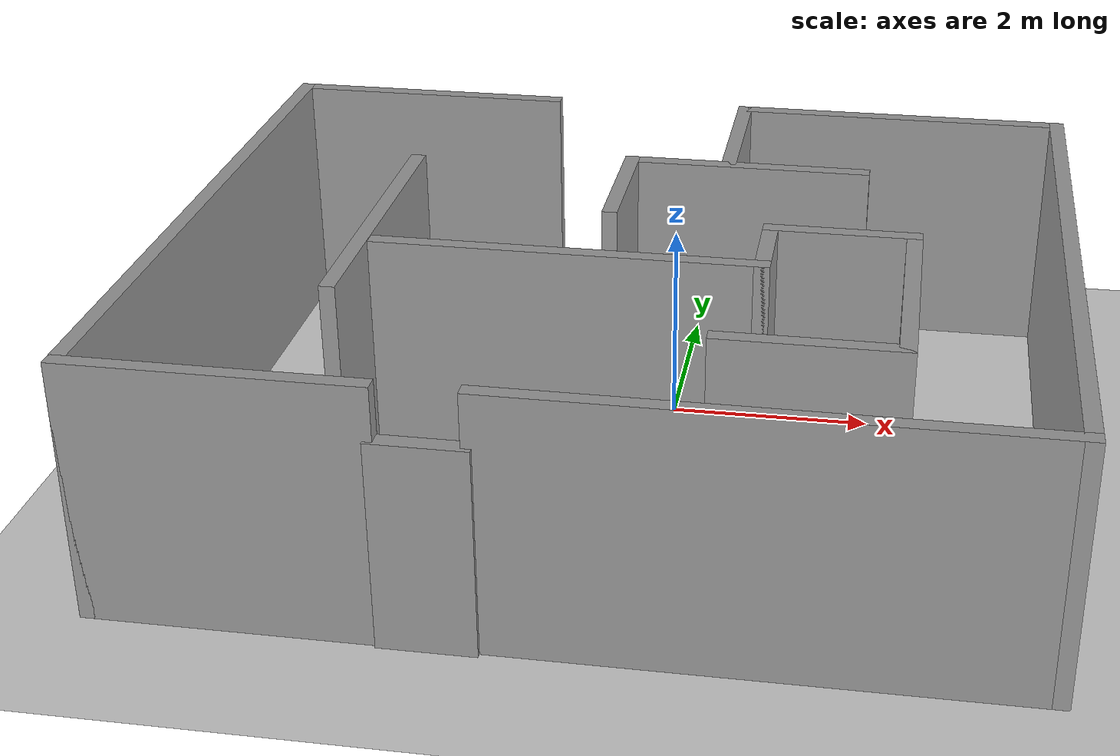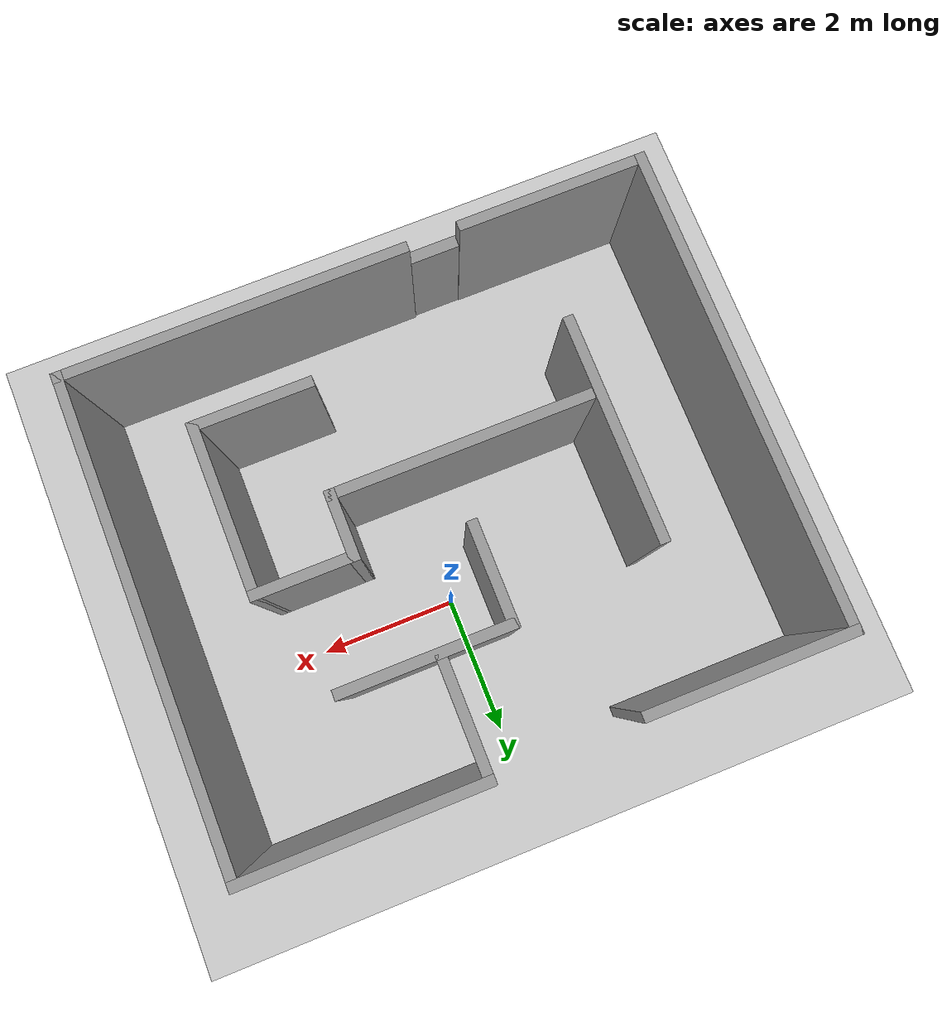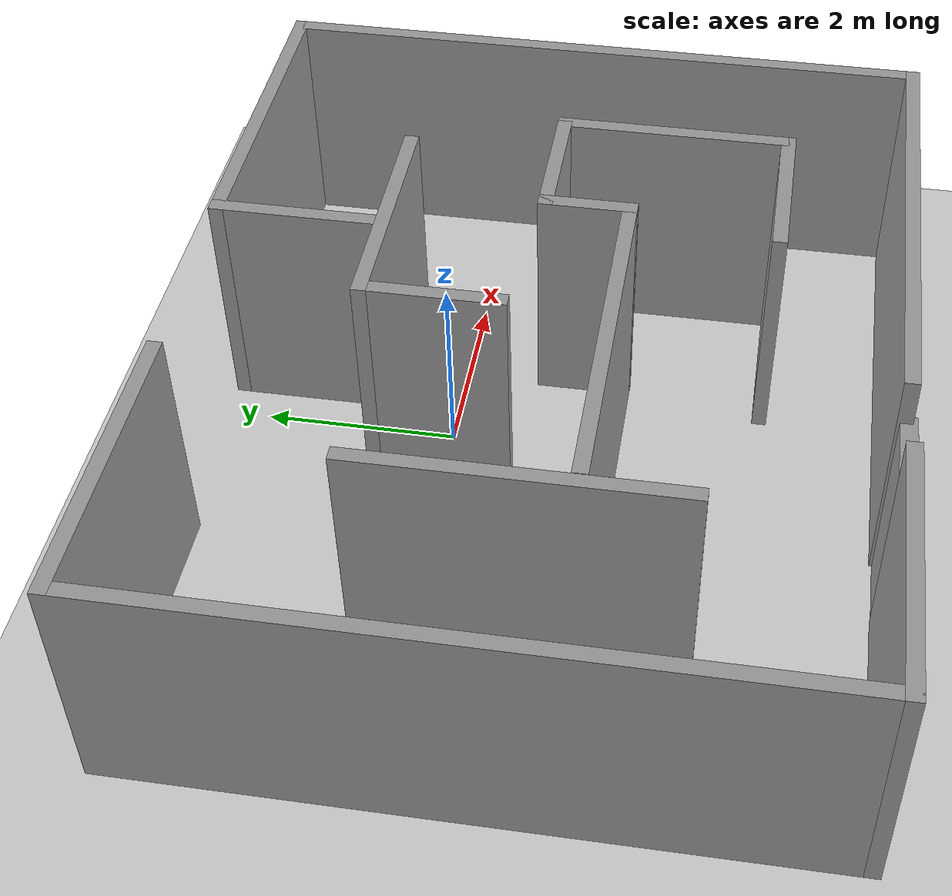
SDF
<sdf version="1.7">
 <world name="default">
  <light name="sun" type="directional">
   <pose>0 0 10 0 -0 0</pose>
   <diffuse>0.8 0.8 0.8 1</diffuse>
   <specular>0.2 0.2 0.2 1</specular>
   <attenuation>
    <range>1000</range>
    <constant>0.9</constant>
    <linear>0.01</linear>
    <quadratic>0.001</quadratic>
   </attenuation>
   <direction>-0.5 0.1 -0.9</direction>
   <spot><inner_angle>0</inner_angle><outer_angle>0</outer_angle><falloff>0</falloff></spot>
  </light>
  <model name="ground_plane">
   <static>1</static>
   <link name="link">
    <collision name="collision">
     <geometry><plane><normal>0 0 1</normal><size>100 100</size></plane></geometry>
     <surface>
      <contact><collide_bitmask>65535</collide_bitmask></contact>
      <friction><ode><mu>100</mu><mu2>50</mu2></ode></friction>
     </surface>
    </collision>
    <visual name="visual">
     <cast_shadows>0</cast_shadows>
     <geometry><plane><normal>0 0 1</normal><size>100 100</size></plane></geometry>
     <material>
      <script><uri>file://media/materials/scripts/gazebo.material</uri><name>Gazebo/Grey</name></script>
     </material>
    </visual>
   </link>
  </model>
  <gravity>0 0 -9.8</gravity>
  <magnetic_field>6e-06 2.3e-05 -4.2e-05</magnetic_field>
  <atmosphere type="adiabatic"/>
  <physics type="ode">
   <max_step_size>0.001</max_step_size>
   <real_time_factor>1</real_time_factor>
   <real_time_update_rate>1000</real_time_update_rate>
  </physics>
  <scene><ambient>0.4 0.4 0.4 1</ambient><background>0.7 0.7 0.7 1</background><shadows>1</shadows></scene>
  <audio><device>default</device></audio>
  <spherical_coordinates>
   <surface_model>EARTH_WGS84</surface_model>
   <latitude_deg>0</latitude_deg>
   <longitude_deg>0</longitude_deg>
   <elevation>0</elevation>
   <heading_deg>0</heading_deg>
  </spherical_coordinates>
  <model name="path2">
   <pose>-0.378518 -1.04624 0 0 -0 0</pose>
   <link name="Door_0">
    <collision name="Door_0_Collision">
     <geometry><box><size>0.9 0.17 2</size></box></geometry>
     <pose>0 0 1 0 -0 0</pose>
    </collision>
    <visual name="Door_0_Visual">
     <pose>0 0 1 0 -0 0</pose>
     <geometry><box><size>0.9 0.17 2</size></box></geometry>
     <material>
      <script><uri>file://media/materials/scripts/gazebo.material</uri><name>Gazebo/Grey</name></script>
     </material>
    </visual>
    <pose>-1.12148 -3.45376 0 0 -0 0</pose>
   </link>
   <link name="Wall_10">
    <collision name="Wall_10_Collision">
     <geometry><box><size>1.75 0.15 2.5</size></box></geometry>
     <pose>0 0 1.25 0 -0 0</pose>
    </collision>
    <visual name="Wall_10_Visual">
     <pose>0 0 1.25 0 -0 0</pose>
     <geometry><box><size>1.75 0.15 2.5</size></box></geometry>
     <material>
      <script><uri>file://media/materials/scripts/gazebo.material</uri><name>Gazebo/Grey</name></script>
      <ambient>1 1 1 1</ambient>
     </material>
     <meta><layer>0</layer></meta>
    </visual>
    <pose>0.811482 2.63376 0 0 -0 -1.5708</pose>
   </link>
   <link name="Wall_12">
    <collision name="Wall_12_Collision">
     <geometry><box><size>2.5 0.15 2.5</size></box></geometry>
     <pose>0 0 1.25 0 -0 0</pose>
    </collision>
    <visual name="Wall_12_Visual">
     <pose>0 0 1.25 0 -0 0</pose>
     <geometry><box><size>2.5 0.15 2.5</size></box></geometry>
     <material>
      <script><uri>file://media/materials/scripts/gazebo.material</uri><name>Gazebo/Grey</name></script>
      <ambient>1 1 1 1</ambient>
     </material>
     <meta><layer>0</layer></meta>
    </visual>
    <pose>0.992609 1.75294 0 0 -0 3.14159</pose>
   </link>
   <link name="Wall_13">
    <collision name="Wall_13_Collision">
     <geometry><box><size>1.5 0.15 2.5</size></box></geometry>
     <pose>0 0 1.25 0 -0 0</pose>
    </collision>
    <visual name="Wall_13_Visual">
     <pose>0 0 1.25 0 -0 0</pose>
     <geometry><box><size>1.5 0.15 2.5</size></box></geometry>
     <material>
      <script><uri>file://media/materials/scripts/gazebo.material</uri><name>Gazebo/Grey</name></script>
      <ambient>1 1 1 1</ambient>
     </material>
     <meta><layer>0</layer></meta>
    </visual>
    <pose>-0.182391 1.07794 0 0 -0 -1.5708</pose>
   </link>
   <link name="Wall_17">
    <collision name="Wall_17_Collision">
     <geometry><box><size>3.75 0.15 2.5</size></box></geometry>
     <pose>0 0 1.25 0 -0 0</pose>
    </collision>
    <visual name="Wall_17_Visual">
     <pose>0 0 1.25 0 -0 0</pose>
     <geometry><box><size>3.75 0.15 2.5</size></box></geometry>
     <material>
      <script><uri>file://media/materials/scripts/gazebo.material</uri><name>Gazebo/Grey</name></script>
      <ambient>1 1 1 1</ambient>
     </material>
     <meta><layer>0</layer></meta>
    </visual>
    <pose>-0.417149 -0.640571 0 0 -0 0</pose>
   </link>
   <link name="Wall_18">
    <collision name="Wall_18_Collision">
     <geometry><box><size>1 0.15 2.5</size></box></geometry>
     <pose>0 0 1.25 0 -0 0</pose>
    </collision>
    <visual name="Wall_18_Visual">
     <pose>0 0 1.25 0 -0 0</pose>
     <geometry><box><size>1 0.15 2.5</size></box></geometry>
     <material>
      <script><uri>file://media/materials/scripts/gazebo.material</uri><name>Gazebo/Grey</name></script>
      <ambient>1 1 1 1</ambient>
     </material>
     <meta><layer>0</layer></meta>
    </visual>
    <pose>1.38285 -0.215571 0 0 -0 1.5708</pose>
   </link>
   <link name="Wall_19">
    <collision name="Wall_19_Collision">
     <geometry><box><size>1.5 0.15 2.5</size></box></geometry>
     <pose>0 0 1.25 0 -0 0</pose>
    </collision>
    <visual name="Wall_19_Visual">
     <pose>0 0 1.25 0 -0 0</pose>
     <geometry><box><size>1.5 0.15 2.5</size></box></geometry>
     <material>
      <script><uri>file://media/materials/scripts/gazebo.material</uri><name>Gazebo/Grey</name></script>
      <ambient>1 1 1 1</ambient>
     </material>
     <meta><layer>0</layer></meta>
    </visual>
    <pose>2.05785 0.209429 0 0 -0 0</pose>
   </link>
   <link name="Wall_2">
    <collision name="Wall_2_Collision">
     <geometry><box><size>2.75 0.15 2.5</size></box></geometry>
     <pose>0 0 1.25 0 -0 0</pose>
    </collision>
    <visual name="Wall_2_Visual">
     <pose>0 0 1.25 0 -0 0</pose>
     <geometry><box><size>2.75 0.15 2.5</size></box></geometry>
     <material>
      <script><uri>file://media/materials/scripts/gazebo.material</uri><name>Gazebo/Grey</name></script>
      <ambient>1 1 1 1</ambient>
     </material>
     <meta><layer>0</layer></meta>
    </visual>
    <pose>-2.86148 -3.43376 0 0 -0 3.14159</pose>
   </link>
   <link name="Wall_20">
    <collision name="Wall_20_Collision">
     <geometry><box><size>2.5 0.15 2.5</size></box></geometry>
     <pose>0 0 1.25 0 -0 0</pose>
    </collision>
    <visual name="Wall_20_Visual">
     <pose>0 0 1.25 0 -0 0</pose>
     <geometry><box><size>2.5 0.15 2.5</size></box></geometry>
     <material>
      <script><uri>file://media/materials/scripts/gazebo.material</uri><name>Gazebo/Grey</name></script>
      <ambient>1 1 1 1</ambient>
     </material>
     <meta><layer>0</layer></meta>
    </visual>
    <pose>2.73285 -0.965571 0 0 -0 -1.5708</pose>
   </link>
   <link name="Wall_21">
    <collision name="Wall_21_Collision">
     <geometry><box><size>1.75 0.15 2.5</size></box></geometry>
     <pose>0 0 1.25 0 -0 0</pose>
    </collision>
    <visual name="Wall_21_Visual">
     <pose>0 0 1.25 0 -0 0</pose>
     <geometry><box><size>1.75 0.15 2.5</size></box></geometry>
     <material>
      <script><uri>file://media/materials/scripts/gazebo.material</uri><name>Gazebo/Grey</name></script>
      <ambient>1 1 1 1</ambient>
     </material>
     <meta><layer>0</layer></meta>
    </visual>
    <pose>1.93285 -2.14057 0 0 -0 3.14159</pose>
   </link>
   <link name="Wall_24">
    <collision name="Wall_24_Collision">
     <geometry><box><size>3.25 0.15 2.5</size></box></geometry>
     <pose>0 0 1.25 0 -0 0</pose>
    </collision>
    <visual name="Wall_24_Visual">
     <pose>0 0 1.25 0 -0 0</pose>
     <geometry><box><size>3.25 0.15 2.5</size></box></geometry>
     <material>
      <script><uri>file://media/materials/scripts/gazebo.material</uri><name>Gazebo/Grey</name></script>
      <ambient>1 1 1 1</ambient>
     </material>
     <meta><layer>0</layer></meta>
    </visual>
    <pose>-2.37273 -0.107802 0 0 -0 -1.5708</pose>
   </link>
   <link name="Wall_4">
    <collision name="Wall_4_Collision">
     <geometry><box><size>7 0.15 2.5</size></box></geometry>
     <pose>0 0 1.25 0 -0 0</pose>
    </collision>
    <visual name="Wall_4_Visual">
     <pose>0 0 1.25 0 -0 0</pose>
     <geometry><box><size>7 0.15 2.5</size></box></geometry>
     <material>
      <script><uri>file://media/materials/scripts/gazebo.material</uri><name>Gazebo/Grey</name></script>
      <ambient>1 1 1 1</ambient>
     </material>
     <meta><layer>0</layer></meta>
    </visual>
    <pose>-4.16148 -0.008756 0 0 -0 1.5708</pose>
   </link>
   <link name="Wall_5">
    <collision name="Wall_5_Collision">
     <geometry><box><size>3 0.15 2.5</size></box></geometry>
     <pose>0 0 1.25 0 -0 0</pose>
    </collision>
    <visual name="Wall_5_Visual">
     <pose>0 0 1.25 0 -0 0</pose>
     <geometry><box><size>3 0.15 2.5</size></box></geometry>
     <material>
      <script><uri>file://media/materials/scripts/gazebo.material</uri><name>Gazebo/Grey</name></script>
      <ambient>1 1 1 1</ambient>
     </material>
     <meta><layer>0</layer></meta>
    </visual>
    <pose>-2.73648 3.41624 0 0 -0 0</pose>
   </link>
   <link name="Wall_7">
    <collision name="Wall_7_Collision">
     <geometry><box><size>5 0.15 2.5</size></box></geometry>
     <pose>0 0 1.25 0 -0 0</pose>
    </collision>
    <visual name="Wall_7_Visual">
     <pose>0 0 1.25 0 -0 0</pose>
     <geometry><box><size>5 0.15 2.5</size></box></geometry>
     <material>
      <script><uri>file://media/materials/scripts/gazebo.material</uri><name>Gazebo/Grey</name></script>
      <ambient>1 1 1 1</ambient>
     </material>
     <meta><layer>0</layer></meta>
    </visual>
    <pose>1.73648 -3.41624 0 0 -0 0</pose>
   </link>
   <link name="Wall_8">
    <collision name="Wall_8_Collision">
     <geometry><box><size>7 0.15 2.5</size></box></geometry>
     <pose>0 0 1.25 0 -0 0</pose>
    </collision>
    <visual name="Wall_8_Visual">
     <pose>0 0 1.25 0 -0 0</pose>
     <geometry><box><size>7 0.15 2.5</size></box></geometry>
     <material>
      <script><uri>file://media/materials/scripts/gazebo.material</uri><name>Gazebo/Grey</name></script>
      <ambient>1 1 1 1</ambient>
     </material>
     <meta><layer>0</layer></meta>
    </visual>
    <pose>4.16148 0.008756 0 0 -0 1.5708</pose>
   </link>
   <link name="Wall_9">
    <collision name="Wall_9_Collision">
     <geometry><box><size>3.5 0.15 2.5</size></box></geometry>
     <pose>0 0 1.25 0 -0 0</pose>
    </collision>
    <visual name="Wall_9_Visual">
     <pose>0 0 1.25 0 -0 0</pose>
     <geometry><box><size>3.5 0.15 2.5</size></box></geometry>
     <material>
      <script><uri>file://media/materials/scripts/gazebo.material</uri><name>Gazebo/Grey</name></script>
      <ambient>1 1 1 1</ambient>
     </material>
     <meta><layer>0</layer></meta>
    </visual>
    <pose>2.48648 3.43376 0 0 -0 3.14159</pose>
   </link>
   <static>1</static>
  </model>
 </world>
</sdf>
